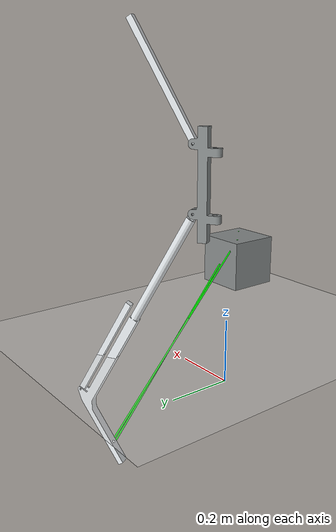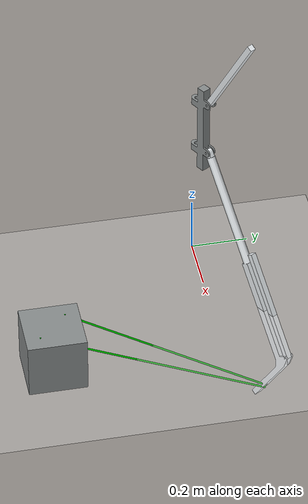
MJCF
<mujoco model="00-elevator">
    <option cone="elliptic" impratio="10"/>
    <compiler angle="radian" meshdir="../meshes/"/>

    <asset>
        <material name="grey" rgba="0.52941 0.54902 0.54902 1"/>
        <material name="light_grey" rgba="0.89804 0.91765 0.92941 1"/>
        <material name="transparent" rgba="1 0 0 0"/>
        <material name="red" rgba="1 0 0 1"/>
        <material name="green" rgba="0 1 0 1"/>
        <mesh name="rotate_rod1_mesh" file="rotate_rod1.STL"/>
        <mesh name="rotate_rod2_mesh" file="rotate_rod2.STL"/>
        <mesh name="rotate_rod3_mesh" file="rotate_rod3.STL"/>
    </asset>

    <worldbody>
        <light pos="0 0 1"/>
        <geom name="ground" type="plane" size="0 0 0.1" rgba="0.9 0.9 0.9 1"/>
        <body name="dumdum" pos="0.6 -0.6 0.15">
            <joint type="free"/>
            <geom type="box" size="0.1 0.1 0.1" mass="40" material="grey"/>
            <site name="tendon_site_end_left" pos="-0.05 0.05 0.1" size="0.015" material="transparent"/>
            <site name="tendon_site_end_right" pos="0.05 -0.05 0.1" size="0.015" material="transparent"/>
        </body>
        <body name="base_link" pos="0 0 0.6">
            <body name="rotate_rod1" pos="0.06 0 0" euler="0 0 1.5708">
                <joint name="rotate_rod_joint1" type="hinge" axis="0 0 1" range="-1.5 1.5" damping="1000" />

                <geom type="mesh" mesh="rotate_rod1_mesh" material="grey"/>

                <body name="rotate_rod2" pos="0.032502 -0.056294 -0.084994" euler="1.5708 2.0944 1.0585 ">
                    <joint name="rotate_rod_joint2" type="hinge" axis="0 0 1" range="-2.41 -1" damping="100"/>
                    <site name="tendon_site_start_left" pos="-0.91 -0.15 0" size="0.015" material="transparent"/>
                    <site name="tendon_site_start_right" pos="-0.92 -0.16 0" size="0.015" material="transparent"/>
                    <geom type="mesh" mesh="rotate_rod2_mesh" material="light_grey"/>

                    <body name="prism_rod_top" pos="-0.785 0.04 0" euler="0 0 3.1415">
                        <joint name="prism_rod_top_joint" type="hinge" axis="0 0 1" range="0 1" damping="100"/>
                        <geom type="box" size="0.2 0.01 0.01" pos="-0.2 0 0" material="light_grey"/>
                        <site name="top_socket" pos="-0.4 0 0" size="0.01" material="transparent"/>
                    </body>
                </body>

                <body name="prism_rod_bottom" pos="0.032502 -0.055 0.12" euler="-1.5708 1.0585 2.0944">
                <joint name="prism_rod_bottom_joint" type="hinge" axis="0 0 1" range="-1 2" damping="10"/>

                <geom type="box" size="0.2 0.01 0.01" pos="-0.2 0 0" material="light_grey"/>

                    <body name="piston_rod" pos="0 0 0" euler="0 0 3.1415">
                    <joint name="slider" type="slide" axis="1 0 0" range="-0.5 0" damping="100000" frictionloss="1000"/>
                    <geom type="capsule" fromto="0 0 0 0.1 0 0" size="0.012" material="transparent"/>
                    <site name="piston_tip" pos="0.1 0 0" size="0.01"  material="transparent"/>
                    </body>
                </body>
            </body>
        </body>
    </worldbody>

    <contact>
        <exclude body1="piston_rod" body2="prism_rod_top"/>
        <exclude body1="piston_rod" body2="prism_rod_bottom"/>
        <exclude body1="piston_rod" body2="rotate_rod2"/>
        <exclude body1="piston_rod" body2="rotate_rod1"/>
        <exclude body1="prism_rod_bottom" body2="rotate_rod2"/>
        <exclude body1="rotate_rod1" body2="rotate_rod2"/>

        <exclude body1="prism_rod_top" body2="rotate_rod2"/>
        <exclude body1="prism_rod_top" body2="prism_rod_bottom"/>
    </contact>

    <equality>
        <connect site1="piston_tip" site2="top_socket" />
    </equality>

    <tendon>
        <spatial name="pull_tendon_left" width="0.003" material="green" stiffness="10000" damping="100" springlength="0.4">
            <site site="tendon_site_start_left"/>
            <site site="tendon_site_end_left"/>
        </spatial>
        <spatial name="pull_tendon_right" width="0.003" material="green" stiffness="10000" damping="100" springlength="0.4">
            <site site="tendon_site_start_right"/>
            <site site="tendon_site_end_right"/>
        </spatial>
    </tendon>

    <keyframe>
        <key name="initial_pose" qpos="0.6 -0.7 0.3 0 0 0 0 -1.5 -1.62 0.19 0.68 0"/>
    </keyframe>
    <actuator>
        <motor name="support_motor" joint="rotate_rod_joint2" gear="250" forcerange="-10e10 10e10" ctrlrange="-1 0"/>
        <position name="piston_motor" joint="slider" kp="10e8" kv="1" forcerange="-10e300 10e300" ctrlrange="-1000 0"/>
        <position name="rotate_motor" joint="rotate_rod_joint1" kp="10000" forcerange="-1000000 1000000" ctrlrange="-1.5 1.5"/>
    </actuator>

</mujoco>
